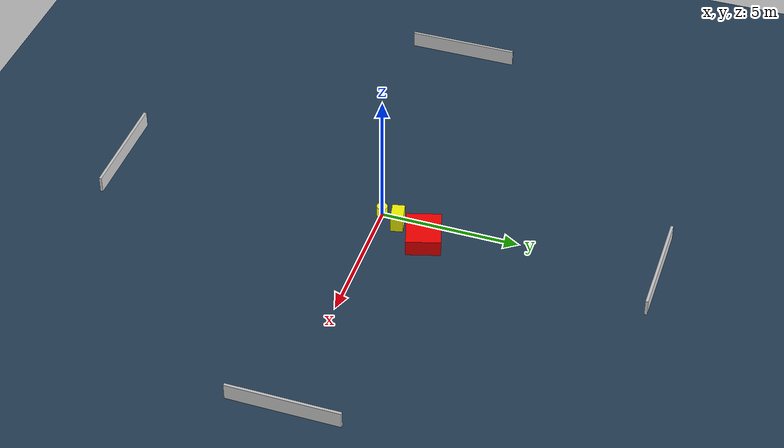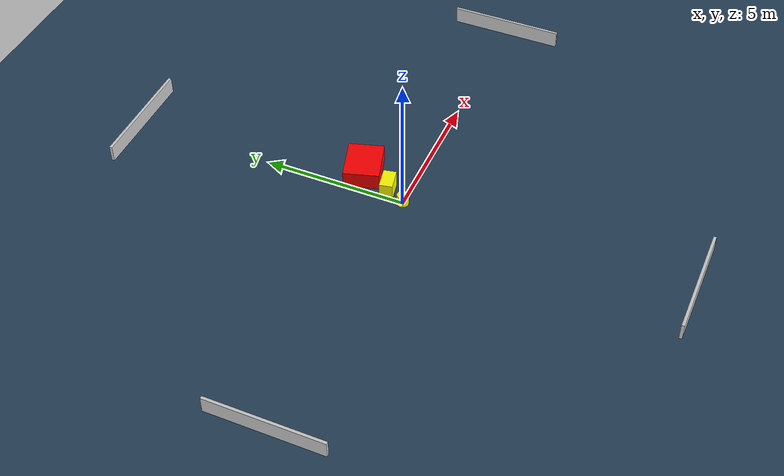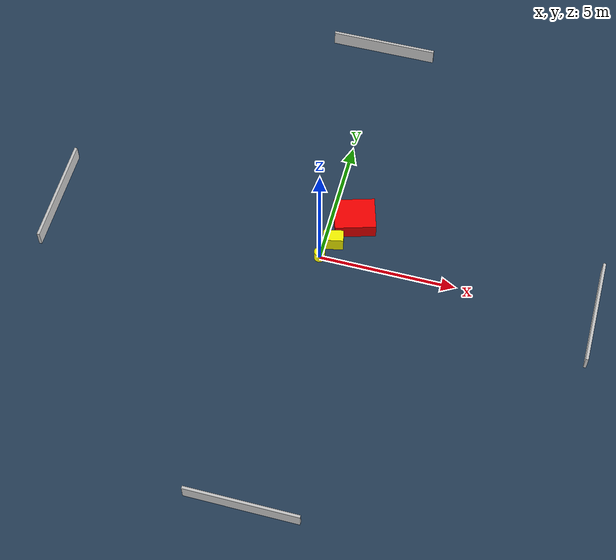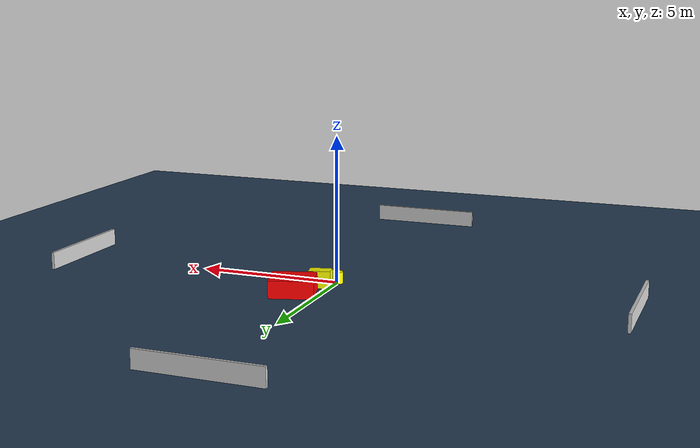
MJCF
<?xml version="1.0" ?>
<mujoco model="generated_environment">
  <option timestep="0.01" integrator="RK4" cone="elliptic"/>
  <default>
    <geom density="1"/>
  </default>
  <asset>
    <texture builtin="gradient" height="3072" name="skybox" rgb1="0.3 0.5 0.7" rgb2="0 0 0" type="skybox" width="512"/>
    <texture builtin="checker" height="300" name="groundplane" rgb1="0.2 0.3 0.4" rgb2="0.1 0.2 0.3" type="2d" width="300"/>
    <material name="groundplane" reflectance="0.2" texrepeat="5 5" texture="groundplane"/>
  </asset>
  <worldbody>
    <light dir="0 0 -1" directional="true" pos="0 0 1.5"/>
    <geom condim="3" friction="0.5 0.005 0.001" material="groundplane" name="floor" pos="0 0 0" size="0 0 0.05" type="plane"/>
    <body name="walls">
      <geom name="wall_1" condim="4" pos="-10.0 0.0 0.3" rgba="0.800000011920929 0.800000011920929 0.800000011920929 1.0" size="0.05 2.0 0.3" type="box"/>
      <geom name="wall_2" condim="4" pos="10.0 0.0 0.3" rgba="0.800000011920929 0.800000011920929 0.800000011920929 1.0" size="0.05 2.0 0.3" type="box"/>
      <geom name="wall_3" condim="4" pos="0.0 -10.0 0.3" rgba="0.800000011920929 0.800000011920929 0.800000011920929 1.0" size="2.0 0.05 0.3" type="box"/>
      <geom name="wall_4" condim="4" pos="0.0 10.0 0.3" rgba="0.800000011920929 0.800000011920929 0.800000011920929 1.0" size="2.0 0.05 0.3" type="box"/>
    </body>
    <body name="robot">
      <joint name="joint_x" type="slide" pos="0 0 0" axis="1 0 0"/>
      <joint name="joint_y" type="slide" pos="0 0 0" axis="0 1 0"/>
      <geom name="robot" type="cylinder" pos="0.0 0.0 0.2" size="0.2 0.2 0.0" mass="5.0" friction="1.0 0.005 0.0001" condim="4" rgba="1.0 1.0 0.0 1.0"/>
    </body>
    <body name="obstacle_1_movable">
      <geom name="obstacle_1_movable" condim="4" pos="0.3311482662272793 0.6832062886118363 0.3" euler="0 0 11.528281323494681" friction="0.0 0.005 0.001" rgba="1.0 1.0 0.0 1.0" size="0.36911419102265697 0.2255519726002217 0.3" type="box" mass="0.1"/>
      <joint type="free"/>
    </body>
    <body name="obstacle_2_static">
      <geom name="obstacle_2_static" condim="4" pos="0.8517251040641984 1.8028747365720803 0.3" euler="0 0 196.5884128945703" friction="0.0 0.005 0.001" rgba="1.0 0.0 0.0 1.0" size="0.7492285814368633 0.6188239489966096 0.3" type="box"/>
    </body>
  </worldbody>
  <actuator>
    <motor name="actuator_x" joint="joint_x" gear="1" ctrlrange="-1 1"/>
    <motor name="actuator_y" joint="joint_y" gear="1" ctrlrange="-1 1"/>
  </actuator>
</mujoco>
